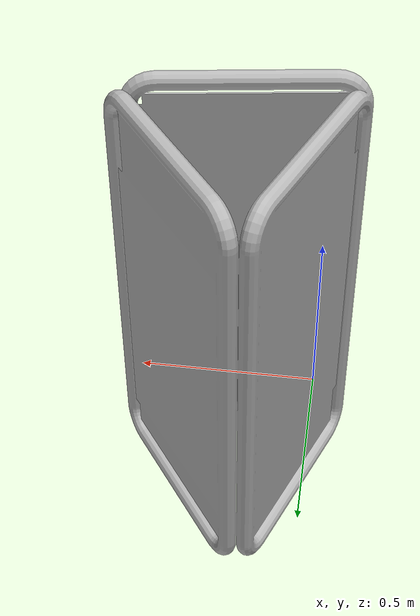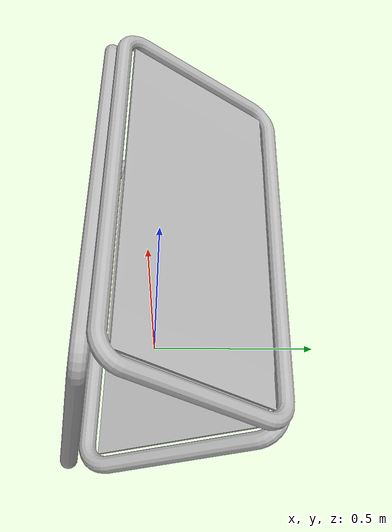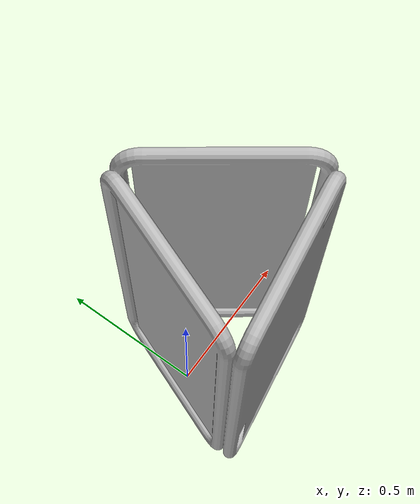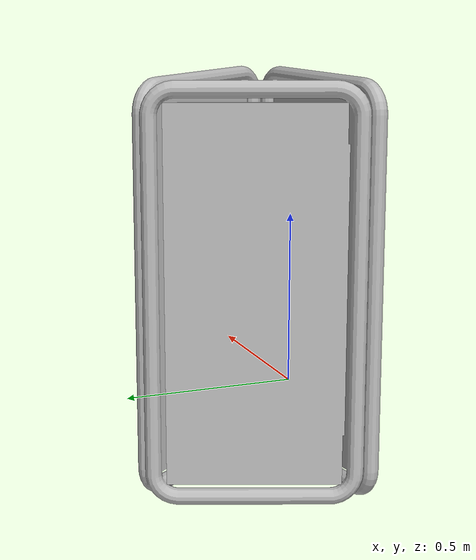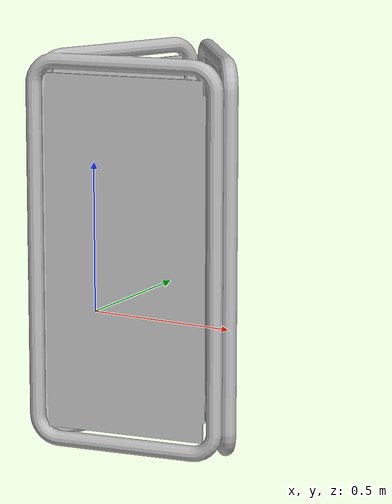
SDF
<?xml version="1.0" ?>
<sdf version="1.5">

<model name="tribuoy">
  <static>true</static>
  <link name="tribuoy_link">

  <visual name="tribuoy">
    <pose>0 0 0 0 0 0</pose>
    <geometry>
      <mesh><uri>model://tribuoy/meshes/tribuoy.obj</uri><scale>1 1 1</scale></mesh>
    </geometry>
  </visual>

  <collision name="tribuoy">
    <pose>0 0 0 0 0 0</pose>
    <geometry>
      <mesh><uri>model://tribuoy/meshes/tribuoy.obj</uri><scale>1 1 1</scale></mesh>
    </geometry>
  </collision>

  </link>
</model>
</sdf>
